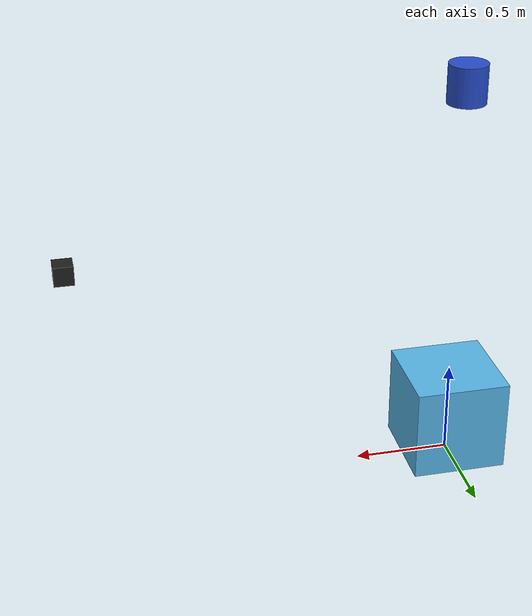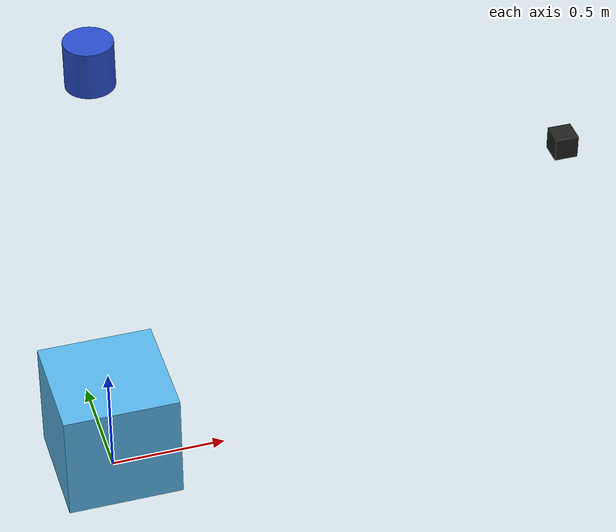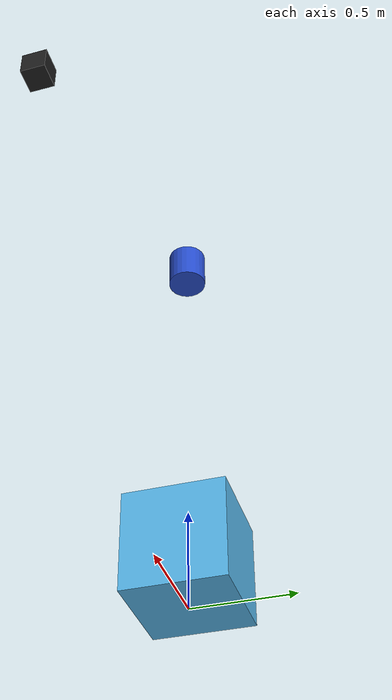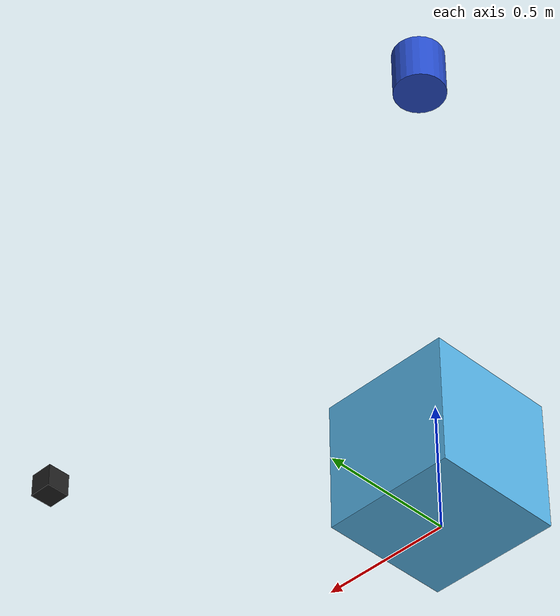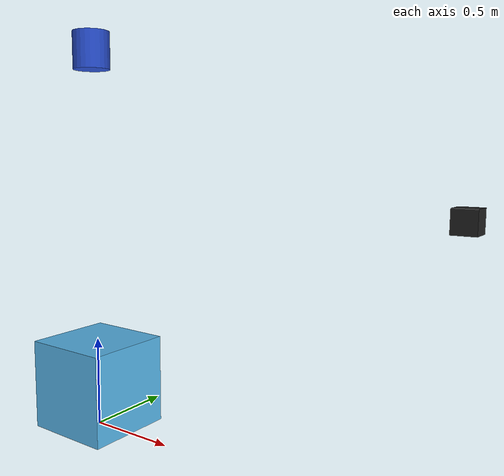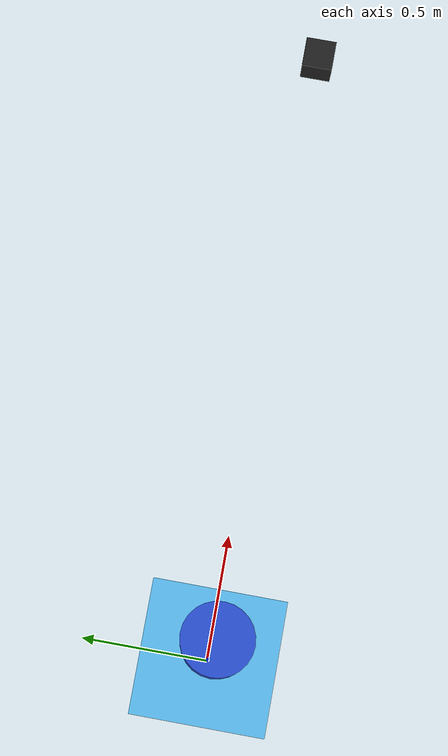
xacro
<?xml version="1.0"?>
<robot name="vehicle" xmlns:xacro="http://www.ros.org/wiki/xacro">
    <xacro:include filename="$(find simulation)/worlds/utils.xacro" />

    <link name="world"></link>

    <joint name="base_joint" type="fixed">
        <origin xyz="0 0 0" rpy="0 0 0" />
        <parent link="world" />
        <child link="base_link" />
        <origin xyz="0 0 0.0" rpy="0 0 0" />
    </joint>

    <!-- Base Link -->
    <link name="base_link">
        <visual name="base_link_visual">
            <origin xyz="0 0 0.25" rpy="0 0 0" />
            <geometry>
                <box size="0.5 0.5 0.5" />
            </geometry>
        </visual>
        <inertial>
            <origin rpy="0 0 0" xyz="0 0 0" />
            <mass value="1" />
            <inertia ixx="0.01" ixy="0.0" ixz="0.0" iyy="0.01" iyz="0.0" izz="0.01" />
        </inertial>
    </link>

    <xacro:include filename="$(find simulation)/sensors/camera_pinhole_bbox.xacro" />
    <xacro:camera_pinhole_macro name="front_camera_wide" parent_link="base_link"
        hfov="70.0" width="3840" height="2160"
        x="2.0" y="0.0" z="1.3"
        roll="0.0" pitch="0.0" yaw="0.0"
    />

    <xacro:include filename="$(find simulation)/sensors/lidar.xacro" />
    <xacro:lidar_macro name="ref_lidar" parent_link="base_link" x="0.0" y="0.0" z="2.0" roll="0.0" pitch="0.0" yaw="0.0" />
</robot>

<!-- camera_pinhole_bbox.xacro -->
<robot xmlns:xacro="http://www.ros.org/wiki/xacro">
    <xacro:include filename="$(find simulation)/worlds/utils.xacro" />
    <xacro:macro name="camera_pinhole_macro" params="name parent_link hfov width height x y z roll pitch yaw">

        <joint name="${name}_joint" type="fixed">
            <parent link="${parent_link}" />
            <child link="${name}_link" />
            <origin xyz="${x} ${y} ${z}" rpy="${roll * pi / 180.0} ${pitch * pi / 180.0} ${yaw * pi / 180.0}" />
        </joint>

        <link name="${name}_link">
            <visual name="${name}_visual">
                <geometry>
                    <box size="0.1 0.1 0.1" /> <!-- Example camera size -->
                </geometry>
            </visual>
        </link>

        <gazebo reference="${name}_link">
            <material>Gazebo/Black</material>

            <sensor name="${name}" type="boundingbox_camera">
                <camera>
                    <box_type>2d</box_type>
                    <horizontal_fov>${hfov * pi / 180.0}</horizontal_fov>
                    <image>
                        <width>${width}</width>
                        <height>${height}</height>
                    </image>
                    <clip>
                        <near>0.1</near>
                        <far>1000</far>
                    </clip>
                    <lens>

                        <intrinsics>
                            <fx>${width / (2 * tan(hfov * pi / 360.0))}</fx>
                            <fy>${width / (2 * tan(hfov * pi / 360.0))}</fy>
                            <cx>${width / 2.0}</cx>
                            <cy>${height / 2.0}</cy>
                        </intrinsics>
                    </lens>
                </camera>
                <always_on>1</always_on>
                <update_rate>10</update_rate>
                <visualize>true</visualize>
                <camera_info>
                    <topic>/camera/${name}/bbox/camera_info</topic>
                </camera_info>
                <topic>/camera/${name}/bbox</topic>
            </sensor>
        </gazebo>
    </xacro:macro>
</robot>

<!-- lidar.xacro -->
<robot xmlns:xacro="http://www.ros.org/wiki/xacro">
    <xacro:include filename="$(find simulation)/worlds/utils.xacro" />
    <xacro:macro name="lidar_macro" params="name parent_link x y z roll pitch yaw">

        <joint name="${name}_joint" type="fixed">
            <parent link="${parent_link}" />
            <child link="${name}_link" />
            <origin xyz="${x} ${y} ${z}" rpy="${roll * pi / 180.0} ${pitch * pi / 180.0} ${yaw * pi / 180.0}" />
        </joint>

        <link name="${name}_link">
            <visual>
                <geometry>
                    <cylinder radius="0.1" length="0.2" />
                </geometry>
                <material name="blue" />
                <origin xyz="0 0 0.1" rpy="0 0 0" />
            </visual>
        </link>

        <gazebo reference="${name}_link">
            <material>Gazebo/Red</material>
            <sensor name="${name}" type="gpu_lidar">
                <pose relative_to="${name}_link">0 0 0 0 0 0</pose>
                <topic>/lidar/${name}</topic>
                <gz_frame_id>${name}_link</gz_frame_id>
                <update_rate>10</update_rate>
                <ray>
                    <scan>
                        <horizontal>
                            <samples>640</samples>
                            <resolution>0.01</resolution>
                            <min_angle>-3.14</min_angle>
                            <max_angle>3.14</max_angle>
                        </horizontal>
                        <vertical>
                            <samples>50</samples>
                            <resolution>0.01</resolution>
                            <min_angle>-0.5</min_angle>
                            <max_angle>0.5</max_angle>
                        </vertical>
                    </scan>
                    <range>
                        <min>0.08</min>
                        <max>20.0</max>
                        <resolution>0.0001</resolution>
                    </range>
                    <noise type="gaussian">
                        <mean>0.0</mean>
                        <stddev>0.01</stddev>  <!-- Standard deviation in meters -->
                    </noise>
                </ray>
                <always_on>1</always_on>
                <visualize>false</visualize>
            </sensor>
        </gazebo>
    </xacro:macro>
</robot>
